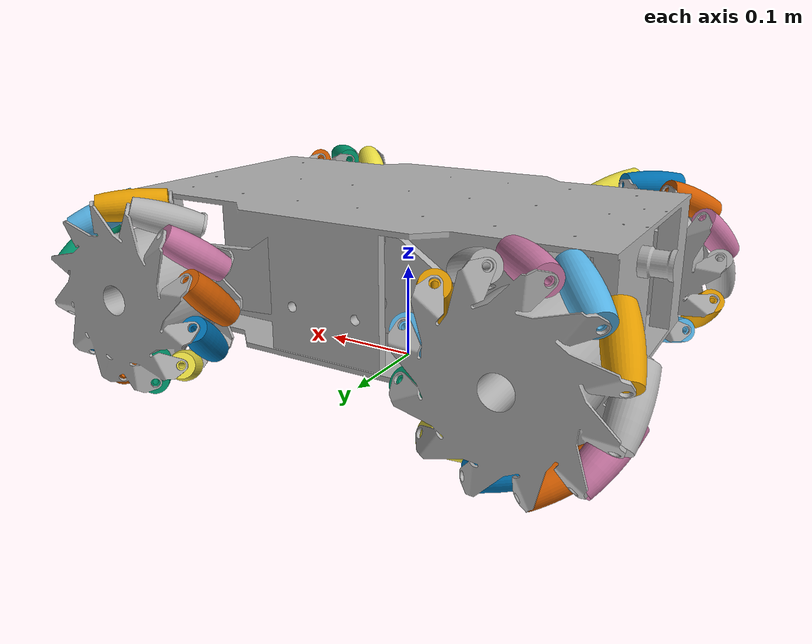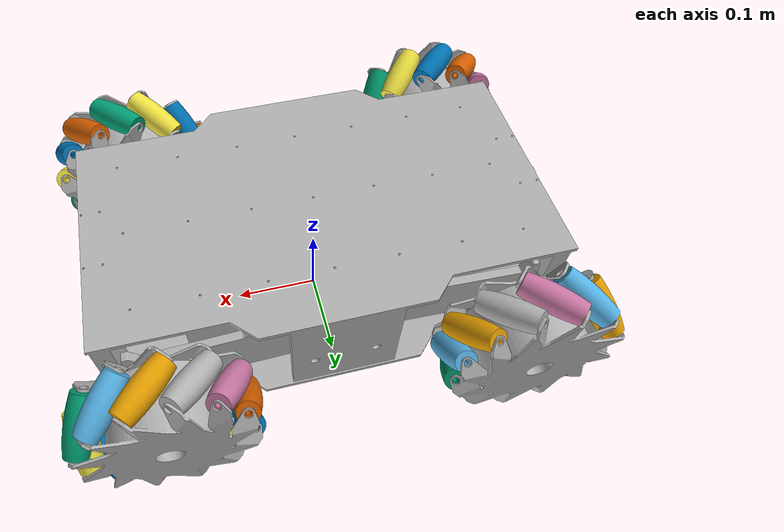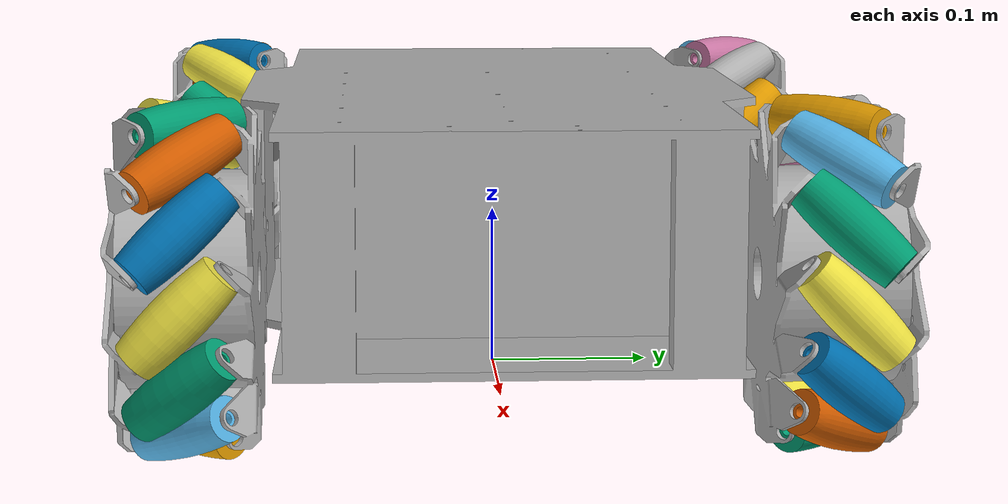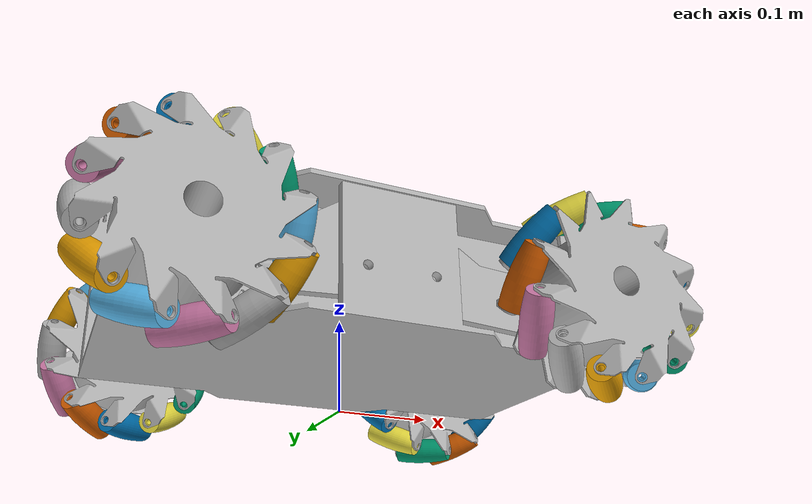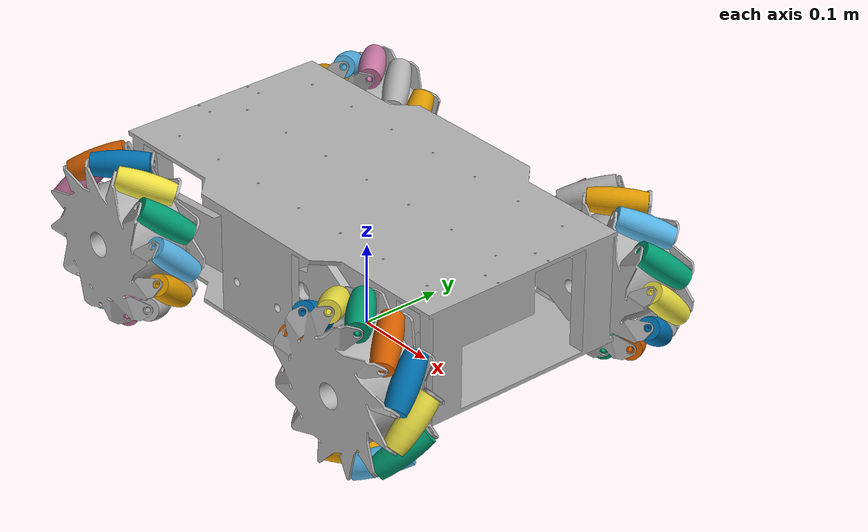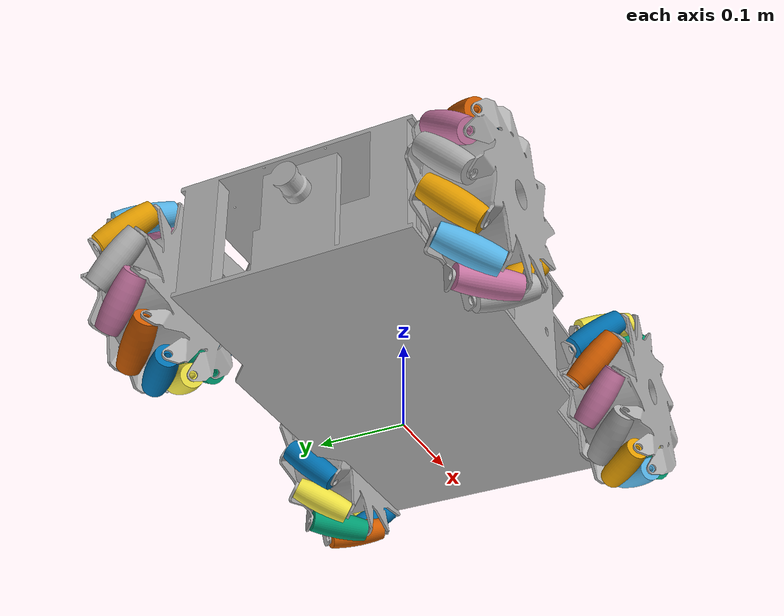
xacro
<?xml version="1.0" ?>
<robot name="g120a" xmlns:xacro="http://www.ros.org/wiki/xacro">

  <xacro:arg name="use_ros2_control" default="true" />
  <xacro:include filename="$(find mecanumrover_description)/urdf/materials.xacro" />
  <xacro:include filename="$(find mecanumrover_description)/urdf/g120a.gazebo" />
  <xacro:if value="$(arg use_ros2_control)">
    <xacro:include filename="$(find mecanumrover_description)/urdf/g120a_ros2_control.xacro" />
  </xacro:if>

  <!-- OPTION LRF TG30 -->

  <!-- OPTION BUMPER -->

  <!-- Inertial macros -->
  <xacro:macro name="cylinder_inertial" params="mass radius length">
    <mass value="${mass}"/>
    <inertia
      ixx="${((radius*radius)/4 + (length*length)/12)*mass}"
      ixy="0" ixz="0"
      iyy="${((radius*radius)/4 + (length*length)/12)*mass}"
      iyz="0"
      izz="${(mass*radius*radius)/2}" />
  </xacro:macro>

  <!-- Barrel (roller) macros -->
  <xacro:macro name="barrel_rl" params="prefix parent dir rot">
    <joint name="${prefix}_joint" type="continuous">
      <parent link="${parent}"/>
      <child  link="${prefix}_link"/>
      <origin
        xyz="${0.0859235*cos(radians(dir))} ${0.0859235*sin(radians(dir))} 0"
        rpy="${pi/4*rot} 0 ${radians(dir)}"/>
      <axis xyz="0 0 1"/>
      <dynamics damping="0.0" friction="0.0"/>
    </joint>

    <link name="${prefix}_link">
      <visual>
        <geometry>
          <mesh filename="package://mecanumrover_description/meshes/g120a/mecanum_barrel.stl"
                scale="0.001 0.001 0.001"/>
        </geometry>
        <material name="cream"/>
      </visual>
      <collision>
        <geometry>
          <mesh filename="package://mecanumrover_description/meshes/g120a/mecanum_barrel.stl"
                scale="0.001 0.001 0.001"/>
        </geometry>
      </collision>
      <inertial>
        <xacro:cylinder_inertial mass="0.03" radius="0.0156" length="0.067"/>
      </inertial>
    </link>
  </xacro:macro>

  <xacro:macro name="barrels_rl" params="prefix parent rot">
    <xacro:barrel_rl prefix="${prefix}_0"  parent="${parent}" dir="0"   rot="${rot}"/>
    <xacro:barrel_rl prefix="${prefix}_1"  parent="${parent}" dir="30"  rot="${rot}"/>
    <xacro:barrel_rl prefix="${prefix}_2"  parent="${parent}" dir="60"  rot="${rot}"/>
    <xacro:barrel_rl prefix="${prefix}_3"  parent="${parent}" dir="90"  rot="${rot}"/>
    <xacro:barrel_rl prefix="${prefix}_4"  parent="${parent}" dir="120" rot="${rot}"/>
    <xacro:barrel_rl prefix="${prefix}_5"  parent="${parent}" dir="150" rot="${rot}"/>
    <xacro:barrel_rl prefix="${prefix}_6"  parent="${parent}" dir="180" rot="${rot}"/>
    <xacro:barrel_rl prefix="${prefix}_7"  parent="${parent}" dir="210" rot="${rot}"/>
    <xacro:barrel_rl prefix="${prefix}_8"  parent="${parent}" dir="240" rot="${rot}"/>
    <xacro:barrel_rl prefix="${prefix}_9"  parent="${parent}" dir="270" rot="${rot}"/>
    <xacro:barrel_rl prefix="${prefix}_10" parent="${parent}" dir="300" rot="${rot}"/>
    <xacro:barrel_rl prefix="${prefix}_11" parent="${parent}" dir="330" rot="${rot}"/>
  </xacro:macro>

  <xacro:macro name="attach_mecanum_rollers" params="wheel_prefix wheel_link rot">
    <xacro:barrels_rl
      prefix="${wheel_prefix}_barrel"
      parent="${wheel_link}"
      rot="${rot}"/>
  </xacro:macro>

  <!-- Base -->
  <link name="base_footprint"/>

  <joint name="base_joint" type="fixed">
    <parent link="base_footprint"/>
    <child link="base_link"/>
    <origin xyz="0 0 0.045" rpy="0 0 0"/>
  </joint>

  <link name="base_link">
    <inertial>
      <origin xyz="-0.001484 -0.00008 0.05"/>
      <mass value="35.6"/>
      <inertia ixx="2.253078e-01" iyy="5.260826e-01" izz="6.264345e-01" ixy="6.578214e-11" iyz="-7.274235e-12" ixz="4.340698e-04"/>
    </inertial>
    <visual>
      <origin xyz="0 0 0" rpy="0 0 -1.5708"/>
      <geometry>
        <mesh filename="package://mecanumrover_description/meshes/g120a/base_link.stl"
              scale="0.001 0.001 0.001"/>
      </geometry>
      <material name="silver"/>
    </visual>
    <collision>
      <origin xyz="0 0 0" rpy="0 0 -1.5708"/>
      <geometry>
        <mesh filename="package://mecanumrover_description/meshes/g120a/base_link.stl"
              scale="0.001 0.001 0.001"/>
      </geometry>
    </collision>
  </link>

  <!-- Arm link macro -->
  <xacro:macro name="g120a_arm_link" params="name">
    <link name="${name}">
      <inertial>
        <origin xyz="0.005 -0.093170 0.006545"/>
        <mass value="0.7"/>
        <inertia ixx="3.141150e-03" iyy="3.882197e-04" izz="2.764597e-03" ixy="-1.225154e-19" ixz="-7.657213e-21" iyz="-2.385480e-04"/>
      </inertial>
      <visual>
        <geometry>
          <mesh filename="package://mecanumrover_description/meshes/g120a/arms.stl"
                scale="0.001 0.001 0.001"/>
        </geometry>
        <material name="silver"/>
      </visual>
      <collision>
        <geometry>
          <mesh filename="package://mecanumrover_description/meshes/g120a/arms.stl"
                scale="0.001 0.001 0.001"/>
        </geometry>
      </collision>
    </link>
  </xacro:macro>

  <!-- Suspension joint macro -->
  <xacro:macro name="g120a_suspension_joint"
               params="name parent child xyz rpy">
    <joint name="${name}" type="revolute">
      <parent link="${parent}"/>
      <child link="${child}"/>
      <origin xyz="${xyz}" rpy="${rpy}"/>
      <axis xyz="1 0 0"/>
      <limit lower="-0.1815142" upper="0" effort="300" velocity="20"/>
      <dynamics damping="10.0" friction="0.1"/>
    </joint>
  </xacro:macro>

  <!-- Wheel link macros -->
  <xacro:macro name="g120a_wheel_link" params="name">
    <link name="${name}">
      <inertial>
        <origin xyz="0 0 0"/>
        <mass value="2.1"/>
        <inertia ixx="3.566749e-03" iyy="3.566747e-03" izz="4.794102e-03" ixy="-7.932688e-21" ixz="-1.586420e-19" iyz="2.339910e-15"/>
      </inertial>
      <visual>
        <geometry>
          <mesh filename="package://mecanumrover_description/meshes/g120a/mecanum_wheel.stl"
                scale="0.001 0.001 0.001"/>
        </geometry>
        <material name="silver"/>
      </visual>
      <collision>
        <geometry>
          <mesh filename="package://mecanumrover_description/meshes/g120a/mecanum_wheel.stl"
                scale="0.001 0.001 0.001"/>
        </geometry>
      </collision>
    </link>
  </xacro:macro>

  <xacro:macro name="g120a_wheel_rev_link" params="name">
    <link name="${name}">
      <inertial>
        <origin xyz="0 0 0"/>
        <mass value="2.1"/>
        <inertia ixx="3.566761e-03" iyy="3.566759e-03" izz="4.794119e-03" ixy="5.552576e-20" ixz="3.172836e-20" iyz="2.337410e-15"/>
      </inertial>
      <visual>
        <geometry>
          <mesh filename="package://mecanumrover_description/meshes/g120a/mecanum_wheel_rev.stl"
                scale="0.001 0.001 0.001"/>
        </geometry>
        <material name="silver"/>
      </visual>
      <collision>
        <geometry>
          <mesh filename="package://mecanumrover_description/meshes/g120a/mecanum_wheel_rev.stl"
                scale="0.001 0.001 0.001"/>
        </geometry>
      </collision>
    </link>
  </xacro:macro>

  <!-- Wheel joint macro -->
  <xacro:macro name="g120a_wheel_joint"
               params="name parent child xyz rpy axis_z">
    <joint name="${name}" type="continuous">
      <parent link="${parent}"/>
      <child link="${child}"/>
      <origin xyz="${xyz}" rpy="${rpy}"/>
      <axis xyz="0 0 ${axis_z}"/>
      <limit effort="18.0" velocity="18.8235294118"/>
    </joint>
  </xacro:macro>

  <!-- Arms -->
  <xacro:g120a_arm_link name="front_left_arm"/>
  <xacro:g120a_arm_link name="front_right_arm"/>
  <xacro:g120a_arm_link name="back_left_arm"/>
  <xacro:g120a_arm_link name="back_right_arm"/>

  <!-- Suspension joints -->
  <xacro:g120a_suspension_joint
    name="front_left_suspension_joint"
    parent="base_link"
    child="front_left_arm"
    xyz="0.035 0.119 0.058"
    rpy="0.0610865 0 ${radians(90)}"/>

  <xacro:g120a_suspension_joint
    name="front_right_suspension_joint"
    parent="base_link"
    child="front_right_arm"
    xyz="0.035 -0.119 0.058"
    rpy="0.0610865 0 ${radians(90)}"/>

  <xacro:g120a_suspension_joint
    name="back_left_suspension_joint"
    parent="base_link"
    child="back_left_arm"
    xyz="-0.035 0.119 0.058"
    rpy="0.0610865 0 ${radians(-90)}"/>

  <xacro:g120a_suspension_joint
    name="back_right_suspension_joint"
    parent="base_link"
    child="back_right_arm"
    xyz="-0.035 -0.119 0.058"
    rpy="0.0610865 0 ${radians(-90)}"/>

  <!-- Wheels -->
  <xacro:g120a_wheel_rev_link name="front_left_wheel_1"/>
  <xacro:g120a_wheel_link     name="front_right_wheel_1"/>
  <xacro:g120a_wheel_link     name="back_left_wheel_1"/>
  <xacro:g120a_wheel_rev_link name="back_right_wheel_1"/>

  <!-- Wheel joints -->
  <xacro:g120a_wheel_joint
    name="front_left_joint"
    parent="front_left_arm"
    child="front_left_wheel_1"
    xyz="0.061 -0.165 0"
    rpy="0 ${radians(90)} 0"
    axis_z="-1"/>

  <xacro:g120a_wheel_joint
    name="front_right_joint"
    parent="front_right_arm"
    child="front_right_wheel_1"
    xyz="-0.061 -0.165 0"
    rpy="0 ${radians(-90)} 0"
    axis_z="1"/>

  <xacro:g120a_wheel_joint
    name="back_left_joint"
    parent="back_left_arm"
    child="back_left_wheel_1"
    xyz="-0.061 -0.165 0"
    rpy="0 ${radians(-90)} 0"
    axis_z="-1"/>

  <xacro:g120a_wheel_joint
    name="back_right_joint"
    parent="back_right_arm"
    child="back_right_wheel_1"
    xyz="0.061 -0.165 0"
    rpy="0 ${radians(90)} 0"
    axis_z="1"/>

  <!-- Attach mecanum rollers -->
  <xacro:attach_mecanum_rollers wheel_prefix="front_left"  wheel_link="front_left_wheel_1"  rot="-1"/>
  <xacro:attach_mecanum_rollers wheel_prefix="back_left"   wheel_link="back_left_wheel_1"   rot="1"/>
  <xacro:attach_mecanum_rollers wheel_prefix="front_right" wheel_link="front_right_wheel_1" rot="1"/>
  <xacro:attach_mecanum_rollers wheel_prefix="back_right"  wheel_link="back_right_wheel_1"  rot="-1"/>

</robot>

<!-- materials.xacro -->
<robot name="mecanum3" xmlns:xacro="http://www.ros.org/wiki/xacro" >

<material name="silver">
  <color rgba="0.700 0.700 0.700 1.000"/>
</material>

</robot>
